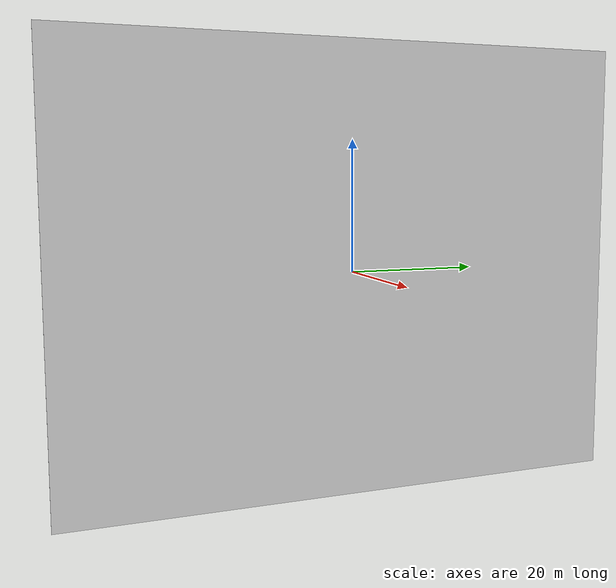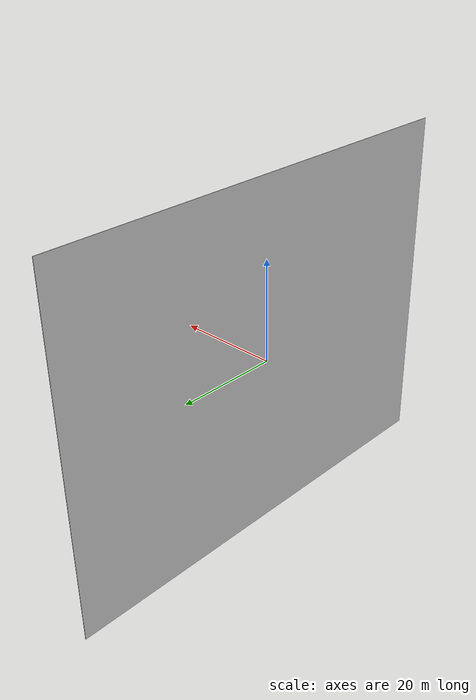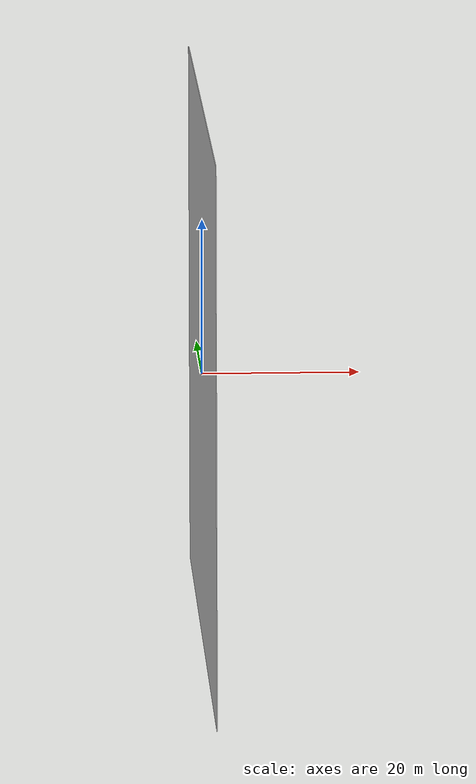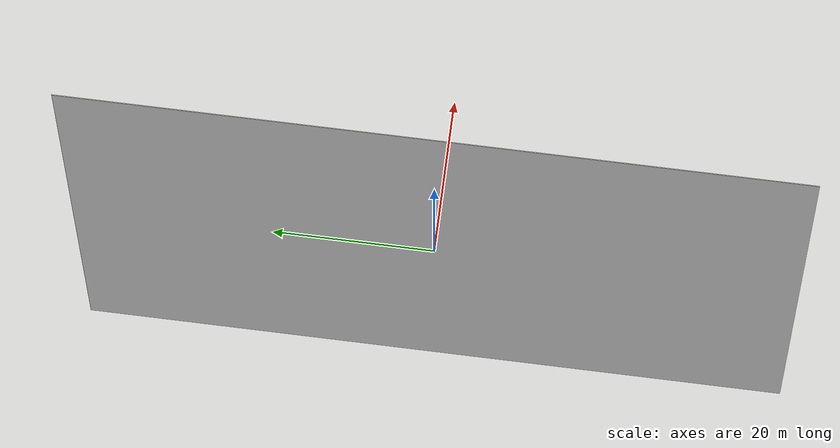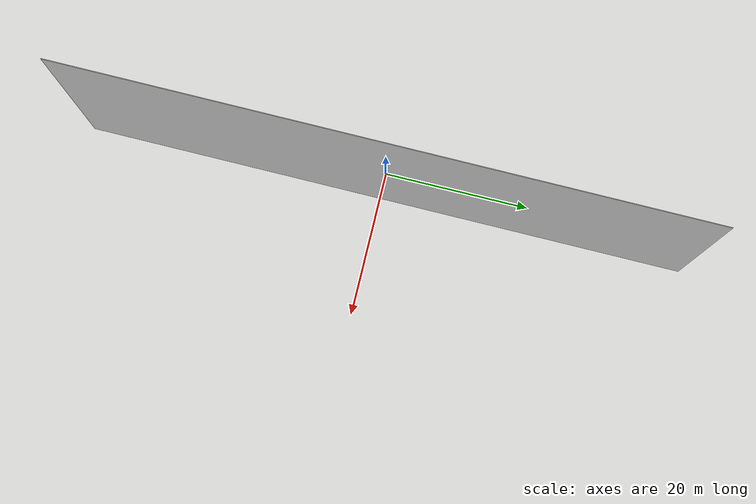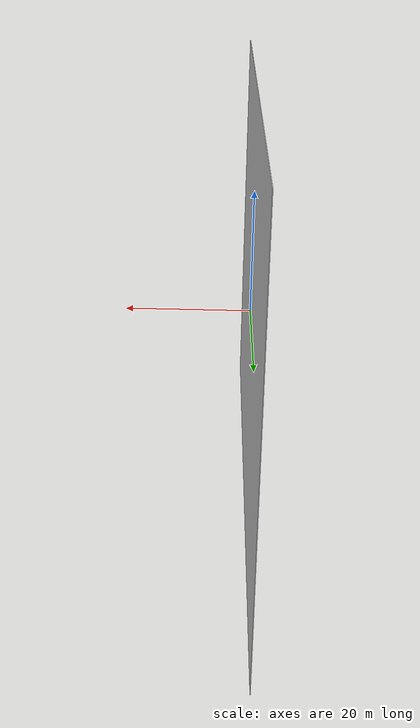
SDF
<?xml version="1.0"?>
<sdf version="1.6">
    <model name='wall'>
        <pose frame='world'>0 0 0 0 0 0</pose>
        <static>1</static>
        <link name='link'>
            <inertial>
                <mass>1</mass>
            </inertial>
            <collision name='collision'>
                <geometry>
                    <box>
                        <size>0.1 90 70</size>
                    </box>
                </geometry>
                <max_contacts>10</max_contacts>
                <surface>
                    <contact>
                        <ode/>
                    </contact>
                    <bounce/>
                    <friction>
                        <torsional>
                            <ode/>
                        </torsional>
                        <ode/>
                    </friction>
                </surface>
            </collision>
            <visual name='visual'>
                <geometry>
                    <box>
                        <size>0.1 90 70</size>
                    </box>
                </geometry>
                <material>
                    <script>
                    <uri>model://wall/materials/scripts/wall.material</uri>
                    <name>wall</name>
                    </script>
                </material>
            </visual>
            <self_collide>false</self_collide>
            <enable_wind>false</enable_wind>
            <kinematic>false</kinematic>
        </link>
    </model>
</sdf>
